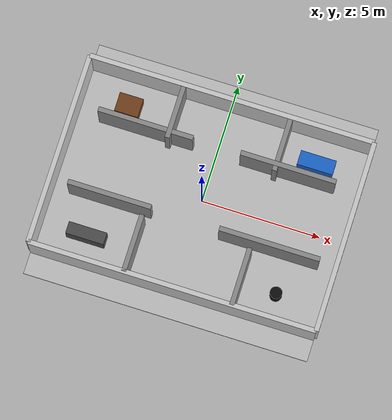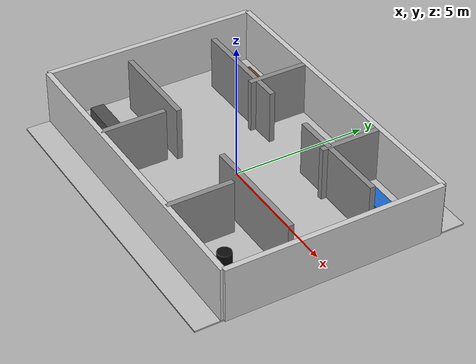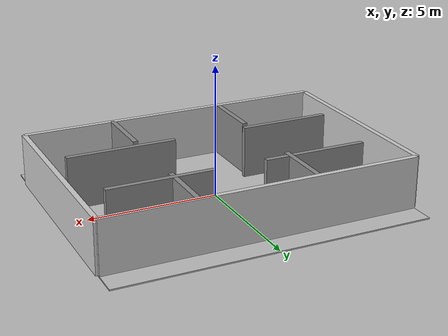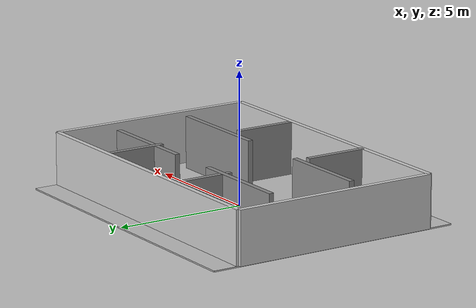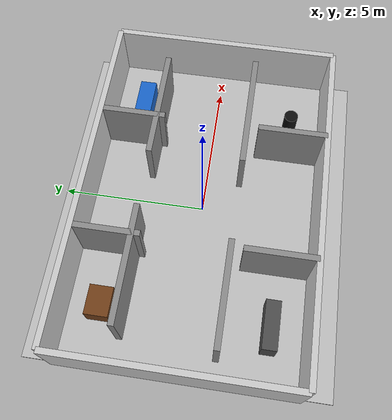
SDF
<?xml version="1.0" ?>
<sdf version="1.6">
  <world name="apartment_world">

    <!-- Physics -->
    <physics name="default_physics" type="ode">
      <max_step_size>0.001</max_step_size>
      <real_time_factor>1.0</real_time_factor>
      <real_time_update_rate>1000</real_time_update_rate>
    </physics>

    <!-- Light -->
    <include>
      <uri>model://sun</uri>
    </include>

    <!-- Ground -->
    <model name="floor">
      <static>true</static>
      <link name="link">
        <collision name="collision">
          <geometry>
            <box>
              <size>12 10 0.05</size>
            </box>
          </geometry>
        </collision>
        <visual name="visual">
          <geometry>
            <box>
              <size>12 10 0.05</size>
            </box>
          </geometry>
          <material>
            <ambient>0.75 0.75 0.75 1</ambient>
            <diffuse>0.75 0.75 0.75 1</diffuse>
          </material>
        </visual>
        <pose>0 0 -0.025 0 0 0</pose>
      </link>
    </model>

    <!-- ================= OUTER BOUNDARY WALLS ================= -->

    <model name="outer_walls">
      <static>true</static>
      <link name="link">

        <!-- Top wall -->
        <collision name="top_collision">
          <pose>0 4 1 0 0 0</pose>
          <geometry><box><size>12 0.2 2</size></box></geometry>
        </collision>
        <visual name="top_visual">
          <pose>0 4 1 0 0 0</pose>
          <geometry><box><size>12 0.2 2</size></box></geometry>
          <material><ambient>0.8 0.8 0.8 1</ambient><diffuse>0.8 0.8 0.8 1</diffuse></material>
        </visual>

        <!-- Bottom wall -->
        <collision name="bottom_collision">
          <pose>0 -4 1 0 0 0</pose>
          <geometry><box><size>12 0.2 2</size></box></geometry>
        </collision>
        <visual name="bottom_visual">
          <pose>0 -4 1 0 0 0</pose>
          <geometry><box><size>12 0.2 2</size></box></geometry>
          <material><ambient>0.8 0.8 0.8 1</ambient><diffuse>0.8 0.8 0.8 1</diffuse></material>
        </visual>

        <!-- Left wall -->
        <collision name="left_collision">
          <pose>-6 0 1 0 0 0</pose>
          <geometry><box><size>0.2 8 2</size></box></geometry>
        </collision>
        <visual name="left_visual">
          <pose>-6 0 1 0 0 0</pose>
          <geometry><box><size>0.2 8 2</size></box></geometry>
          <material><ambient>0.8 0.8 0.8 1</ambient><diffuse>0.8 0.8 0.8 1</diffuse></material>
        </visual>

        <!-- Right wall -->
        <collision name="right_collision">
          <pose>6 0 1 0 0 0</pose>
          <geometry><box><size>0.2 8 2</size></box></geometry>
        </collision>
        <visual name="right_visual">
          <pose>6 0 1 0 0 0</pose>
          <geometry><box><size>0.2 8 2</size></box></geometry>
          <material><ambient>0.8 0.8 0.8 1</ambient><diffuse>0.8 0.8 0.8 1</diffuse></material>
        </visual>

      </link>
    </model>

    <!-- ================= ROOM PARTITIONS WITH DOOR GAPS ================= -->

    <model name="partitions">
      <static>true</static>
      <link name="link">

        <!-- Horizontal partition y = 2, door gap in middle -->
        <collision name="p1_left_collision">
          <pose>-3 2 1 0 0 0</pose>
          <geometry><box><size>4 0.2 2</size></box></geometry>
        </collision>
        <visual name="p1_left_visual">
          <pose>-3 2 1 0 0 0</pose>
          <geometry><box><size>4 0.2 2</size></box></geometry>
          <material><ambient>0.55 0.55 0.55 1</ambient><diffuse>0.55 0.55 0.55 1</diffuse></material>
        </visual>

        <collision name="p1_right_collision">
          <pose>3 2 1 0 0 0</pose>
          <geometry><box><size>4 0.2 2</size></box></geometry>
        </collision>
        <visual name="p1_right_visual">
          <pose>3 2 1 0 0 0</pose>
          <geometry><box><size>4 0.2 2</size></box></geometry>
          <material><ambient>0.55 0.55 0.55 1</ambient><diffuse>0.55 0.55 0.55 1</diffuse></material>
        </visual>

        <!-- Horizontal partition y = -1.2, offset door gap -->
        <collision name="p2_left_collision">
          <pose>-3.5 -1.2 1 0 0 0</pose>
          <geometry><box><size>3.5 0.2 2</size></box></geometry>
        </collision>
        <visual name="p2_left_visual">
          <pose>-3.5 -1.2 1 0 0 0</pose>
          <geometry><box><size>3.5 0.2 2</size></box></geometry>
          <material><ambient>0.55 0.55 0.55 1</ambient><diffuse>0.55 0.55 0.55 1</diffuse></material>
        </visual>

        <collision name="p2_right_collision">
          <pose>3.2 -1.2 1 0 0 0</pose>
          <geometry><box><size>4.2 0.2 2</size></box></geometry>
        </collision>
        <visual name="p2_right_visual">
          <pose>3.2 -1.2 1 0 0 0</pose>
          <geometry><box><size>4.2 0.2 2</size></box></geometry>
          <material><ambient>0.55 0.55 0.55 1</ambient><diffuse>0.55 0.55 0.55 1</diffuse></material>
        </visual>

        <!-- Vertical partition x = -2, door gap -->
        <collision name="p3_top_collision">
          <pose>-2 2.8 1 0 0 0</pose>
          <geometry><box><size>0.2 2.2 2</size></box></geometry>
        </collision>
        <visual name="p3_top_visual">
          <pose>-2 2.8 1 0 0 0</pose>
          <geometry><box><size>0.2 2.2 2</size></box></geometry>
          <material><ambient>0.55 0.55 0.55 1</ambient><diffuse>0.55 0.55 0.55 1</diffuse></material>
        </visual>

        <collision name="p3_bottom_collision">
          <pose>-2 -2.8 1 0 0 0</pose>
          <geometry><box><size>0.2 2.4 2</size></box></geometry>
        </collision>
        <visual name="p3_bottom_visual">
          <pose>-2 -2.8 1 0 0 0</pose>
          <geometry><box><size>0.2 2.4 2</size></box></geometry>
          <material><ambient>0.55 0.55 0.55 1</ambient><diffuse>0.55 0.55 0.55 1</diffuse></material>
        </visual>

        <!-- Vertical partition x = 2.5, doorway -->
        <collision name="p4_top_collision">
          <pose>2.5 2.8 1 0 0 0</pose>
          <geometry><box><size>0.2 2.2 2</size></box></geometry>
        </collision>
        <visual name="p4_top_visual">
          <pose>2.5 2.8 1 0 0 0</pose>
          <geometry><box><size>0.2 2.2 2</size></box></geometry>
          <material><ambient>0.55 0.55 0.55 1</ambient><diffuse>0.55 0.55 0.55 1</diffuse></material>
        </visual>

        <collision name="p4_bottom_collision">
          <pose>2.5 -2.8 1 0 0 0</pose>
          <geometry><box><size>0.2 2.4 2</size></box></geometry>
        </collision>
        <visual name="p4_bottom_visual">
          <pose>2.5 -2.8 1 0 0 0</pose>
          <geometry><box><size>0.2 2.4 2</size></box></geometry>
          <material><ambient>0.55 0.55 0.55 1</ambient><diffuse>0.55 0.55 0.55 1</diffuse></material>
        </visual>

      </link>
    </model>

    <!-- ================= OBSTACLES / FURNITURE ================= -->

    <model name="table">
      <static>true</static>
      <pose>-4 2.8 0.35 0 0 0</pose>
      <link name="link">
        <collision name="collision">
          <geometry><box><size>1.0 0.8 0.7</size></box></geometry>
        </collision>
        <visual name="visual">
          <geometry><box><size>1.0 0.8 0.7</size></box></geometry>
          <material><ambient>0.45 0.25 0.10 1</ambient><diffuse>0.45 0.25 0.10 1</diffuse></material>
        </visual>
      </link>
    </model>

    <model name="sofa">
      <static>true</static>
      <pose>4 2.8 0.35 0 0 0</pose>
      <link name="link">
        <collision name="collision">
          <geometry><box><size>1.5 0.6 0.7</size></box></geometry>
        </collision>
        <visual name="visual">
          <geometry><box><size>1.5 0.6 0.7</size></box></geometry>
          <material><ambient>0.1 0.4 0.8 1</ambient><diffuse>0.1 0.4 0.8 1</diffuse></material>
        </visual>
      </link>
    </model>

    <model name="kitchen_counter">
      <static>true</static>
      <pose>-4 -2.8 0.45 0 0 0</pose>
      <link name="link">
        <collision name="collision">
          <geometry><box><size>1.6 0.5 0.9</size></box></geometry>
        </collision>
        <visual name="visual">
          <geometry><box><size>1.6 0.5 0.9</size></box></geometry>
          <material><ambient>0.3 0.3 0.3 1</ambient><diffuse>0.3 0.3 0.3 1</diffuse></material>
        </visual>
      </link>
    </model>

    <model name="dustbin">
      <static>true</static>
      <pose>4 -2.8 0.35 0 0 0</pose>
      <link name="link">
        <collision name="collision">
          <geometry><cylinder><radius>0.25</radius><length>0.7</length></cylinder></geometry>
        </collision>
        <visual name="visual">
          <geometry><cylinder><radius>0.25</radius><length>0.7</length></cylinder></geometry>
          <material><ambient>0.05 0.05 0.05 1</ambient><diffuse>0.05 0.05 0.05 1</diffuse></material>
        </visual>
      </link>
    </model>

  </world>
</sdf>
